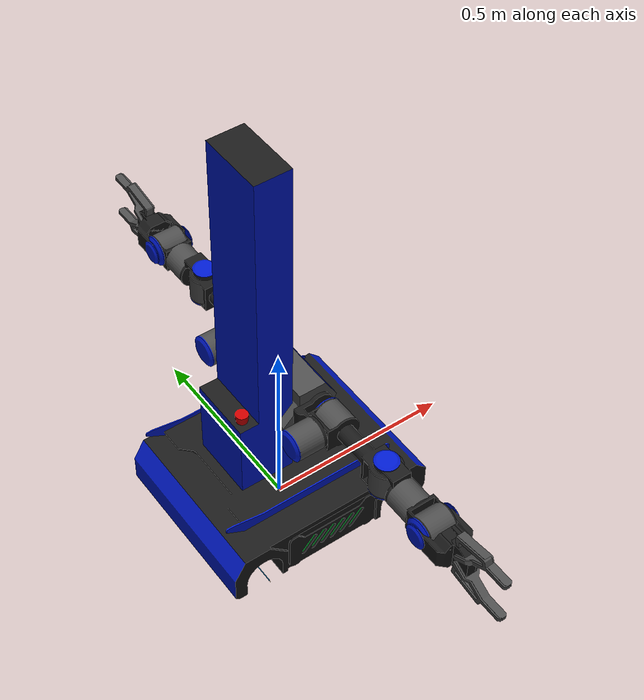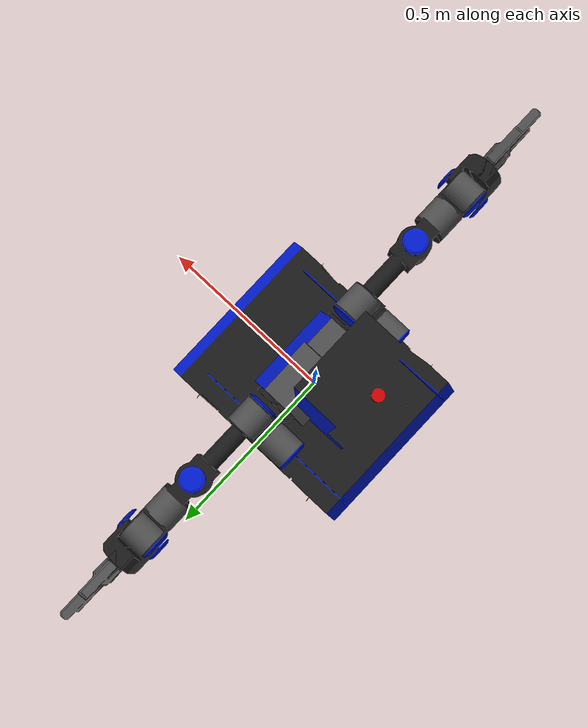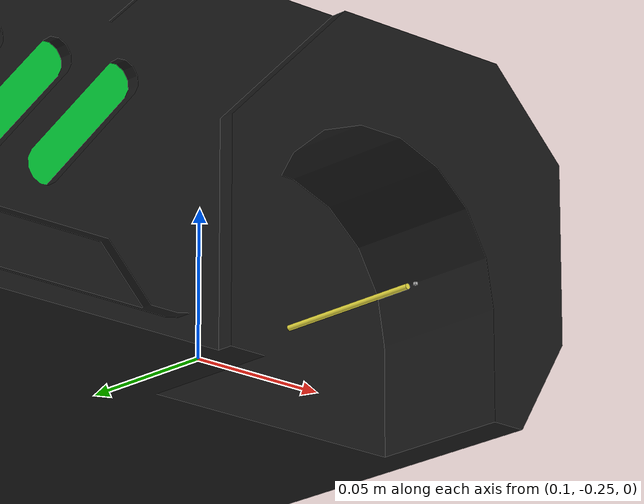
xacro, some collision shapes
<?xml version="1.0"?>
<robot name="wpr2" xmlns:xacro="http://ros.org/wiki/xacro">

  <xacro:include filename="$(find wpr2_description)/urdf/base_mecanum.urdf.xacro"/>

  <xacro:include filename="$(find wpr2_description)/urdf/torso.xacro"/>

  <!-- Left Arm -->
  <xacro:include filename="$(find wpr2_description)/urdf/arm_left.urdf.xacro"/>
  <xacro:arm_left base_frame="chest_link" x="0.035" y="0.18" z="0.0" roll="0" pitch="${M_PI}" yaw="0"/>

  <!-- Right Arm -->
  <xacro:include filename="$(find wpr2_description)/urdf/arm_right.urdf.xacro"/>
  <xacro:arm_right base_frame="chest_link" x="0.035" y="-0.18" z="0.0" roll="0" pitch="0" yaw="${M_PI}"/>

  <gazebo>
    <plugin name="gazebo_ros_control" filename="libgazebo_ros_control.so">
      <robotNamespace>/wpr2</robotNamespace>
      <robotSimType>gazebo_ros_control/DefaultRobotHWSim</robotSimType>
      <legacyModeNS>true</legacyModeNS>
    </plugin>
  </gazebo>

</robot>

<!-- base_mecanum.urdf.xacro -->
<robot xmlns:xacro="http://ros.org/wiki/xacro">
  <xacro:property name="M_PI" value="3.1415926535897931"/>
  <xacro:property name="length" value="0.395"/>
  <xacro:property name="width" value="0.37"/>

  <!-- base_footprint -->
  <link name="base_footprint">
      <visual>
        <origin xyz="0 0 0" rpy="0 0 0" />
        <geometry>
          <box size="0.001 0.001 0.001" />
        </geometry>
        <material name="TransparentGreen" />
      </visual>
  </link>
  <joint name="base_joint" type="fixed">
    <origin xyz="0 0 0.02" rpy="0 0 0" />
    <parent link="base_footprint"/>
    <child link="base_link" />
  </joint>

  <!-- base_link -->
  <link name="base_link">
      <visual>
          <geometry>
              <mesh filename="package://wpr2_description/meshes/base.dae" scale="1 1 1"/>
          </geometry>
        <origin rpy = "0 0 0" xyz = "0.0 0.0 0.13"/>
      </visual>
      <collision>
        <origin xyz="0.005 0 0.05" rpy="0 0 0" />
        <geometry>
          <box size="0.57 0.37 0.1"/>
        </geometry>
      </collision>
      <inertial>
        <mass value="20"/>
        <inertia ixx="10" ixy="0.0" ixz="0.0" iyy="10" iyz="0.0" izz="10"/>
      </inertial>
  </link>

  <!-- mecanum wheel unit -->
  <xacro:macro name="mecanum_wheel" params="LR FB">
      <xacro:if value="${LR=='left'}">
        <xacro:property name="SignY" value="1"/>
        <xacro:property name="RollWheel" value="0"/>
      </xacro:if>
      <xacro:if value="${LR=='right'}">
        <xacro:property name="SignY" value="-1"/>
        <xacro:property name="RollWheel" value="3.1415926535897931"/>
      </xacro:if>
      <xacro:if value="${FB=='front'}">
        <xacro:property name="SignX" value="1"/>
      </xacro:if>
      <xacro:if value="${FB=='back'}">
        <xacro:property name="SignX" value="-1"/>
      </xacro:if>
      <link name="${FB}_${LR}_wheel_link">
          <visual>
              <origin xyz="0.0 0.06 0.0" rpy="1.570796327 0 0"/>
              <geometry>
                <xacro:if value="${(LR=='left' and FB=='front') or (LR=='right' and FB=='back')}">
                  <mesh filename="package://wpr2_description/meshes/mecanum_a.dae" scale="1 1 1"/>
                </xacro:if>
                <xacro:if value="${(LR=='right' and FB=='front')  or (LR=='left' and FB=='back')}">
                  <mesh filename="package://wpr2_description/meshes/mecanum_b.dae" scale="1 1 1"/>
                </xacro:if>
              </geometry>
          </visual>
          <collision>
            <origin xyz="0 0.029 0" rpy="1.570796327 0 0" />
            <geometry>
              <cylinder length="0.058" radius="0.001"/>
            </geometry>
          </collision>
          <inertial>
            <mass value="0.00001"/>
            <inertia ixx="0.1" ixy="0.0" ixz="0.0" iyy="0.1" iyz="0.0" izz="0.1"/>
          </inertial>
      </link>
      <joint name="${FB}_${LR}_wheel_joint" type="continuous">
          <parent link="base_link"/>
          <child link="${FB}_${LR}_wheel_link"/>
          <origin xyz="${SignX*length/2}   ${SignY*width/2}  0.029" rpy="${RollWheel} 0.0 0.0"/>
          <axis xyz="0 1 0"/>
      </joint>
      <transmission name="${FB}_${LR}_transmission">
      <type>transmission_interface/SimpleTransmission</type>
      <joint name="${FB}_${LR}_wheel_joint">
        <hardwareInterface>hardware_interface/PositionJointInterface</hardwareInterface>
      </joint>
      <actuator name="${FB}_${LR}_motor">
        <hardwareInterface>PositionJointInterface</hardwareInterface>
        <mechanicalReduction>1</mechanicalReduction>
      </actuator>
    </transmission>
  </xacro:macro>

  <!-- wheels -->
  <xacro:mecanum_wheel FB="front" LR="left"/>
  <xacro:mecanum_wheel FB="front" LR="right"/>
  <xacro:mecanum_wheel FB="back" LR="right"/>
  <xacro:mecanum_wheel FB="back" LR="left"/>

  <!-- foot unit -->
  <xacro:macro name="wheel_foot" params="LR FB">
      <xacro:if value="${LR=='left'}">
        <xacro:property name="SignY" value="1"/>
      </xacro:if>
      <xacro:if value="${LR=='right'}">
        <xacro:property name="SignY" value="-1"/>
      </xacro:if>
      <xacro:if value="${FB=='front'}">
        <xacro:property name="SignX" value="1"/>
      </xacro:if>
      <xacro:if value="${FB=='back'}">
        <xacro:property name="SignX" value="-1"/>
      </xacro:if>
      <link name="${FB}_${LR}_foot_link">
          <visual>
              <origin xyz="0.0 0.0 0.0" rpy="0 0 0"/>
              <geometry>
                <box size="0.001 0.001 0.001"/>
              </geometry>
          </visual>
          <collision>
            <origin xyz="0 0 0" rpy="0 0 0" />
            <geometry>
              <cylinder length="0.01" radius="0.05"/>
            </geometry>
          </collision>
          <inertial>
            <mass value="0.1"/>
            <inertia ixx="1" ixy="0.0" ixz="0.0" iyy="1" iyz="0.0" izz="1"/>
          </inertial>
      </link>
        <joint name="${FB}_${LR}_foot_joint" type="fixed">
          <parent link="base_link"/>
          <child link="${FB}_${LR}_foot_link"/>
          <origin xyz="${SignX*length/2}   ${SignY*width/1.5}  0.029" rpy="1.57 0.0 0.0"/>
      </joint>
  </xacro:macro>

  <xacro:wheel_foot FB="front" LR="left"/>
  <xacro:wheel_foot FB="front" LR="right"/>
  <xacro:wheel_foot FB="back" LR="right"/>
  <xacro:wheel_foot FB="back" LR="left"/>

  <!-- Lidar -->
  <link name="laser">
    <visual>
      <geometry>
        <cylinder length="0.001" radius="0.001"/>
      </geometry>
      <origin rpy="0 0 0" xyz="0 0 0"/>
    </visual>
  </link>
  <joint name="laser_joint" type="fixed">
    <origin rpy="0 0 3.1415926" xyz="0 0 0.16"/>
    <parent link="base_link"/>
    <child link="laser"/>
  </joint>

  <!-- Gazebo plugin for RpLidar C1 -->
  <gazebo reference="laser">
    <sensor type="ray" name="rplidar_sensor">
      <pose>0 0 0.06 0 0 0</pose>
      <visualize>false</visualize>
      <update_rate>10</update_rate>
      <ray>
        <scan>
          <horizontal>
            <samples>720</samples>
            <resolution>1</resolution>
            <min_angle>-3.14159265</min_angle>
            <max_angle>3.14159265</max_angle>
          </horizontal>
        </scan>
        <range>
          <min>0.02</min>
          <max>10.0</max>
          <resolution>0.01</resolution>
        </range>
      </ray>
      <plugin name="rplidar_ros_controller" filename="libgazebo_ros_laser.so">
        <topicName>scan_raw</topicName>
        <frameName>laser</frameName>
      </plugin>
    </sensor>
  </gazebo>
</robot>

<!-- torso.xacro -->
<robot xmlns:xacro="http://ros.org/wiki/xacro">
  <link name = "chest_link">
    <visual>
      <geometry>
        <mesh filename="package://wpr2_description/meshes/chest.dae" scale=" 1 1 1 "/>
      </geometry>
      <origin rpy = "0 0 0" xyz = "0.015 0.0 0.01"/>
    </visual>
    <collision>
      <origin xyz="0.03 0 -0.01" rpy="0 0 0"/>
      <geometry>
       <box size="0.1 0.22 0.13"/>
      </geometry>
    </collision>
     <inertial>
      <mass value="1"/>
      <inertia ixx="0.1" ixy="0.0" ixz="0.0" iyy="0.1" iyz="0.0" izz="0.01"/>
    </inertial>
  </link>

  <joint name="chest_height" type="prismatic">
    <parent link="base_link"/>
    <child link="chest_link"/>
    <limit effort="1000.0" lower="0" upper="0.7" velocity="0.5"/>
    <dynamics damping="0.0" friction="0.0"/>
    <origin xyz="0.0 0 0.4" rpy="0 0 0"/>
    <axis xyz="0 0 1"/>
  </joint>
  <transmission name="chest_height_transmission">
    <type>transmission_interface/SimpleTransmission</type>
    <joint name="chest_height">
      <hardwareInterface>hardware_interface/PositionJointInterface</hardwareInterface>
    </joint>
    <actuator name="chest_height_motor">
      <hardwareInterface>PositionJointInterface</hardwareInterface>
      <mechanicalReduction>1</mechanicalReduction>
    </actuator>
  </transmission>

  <!-- Camera -->
  <link name="femto_base">
    <visual>
      <origin rpy="0 0 0" xyz="0 0 0"/>
      <geometry>
        <box size="0 0 0"/>
      </geometry>
    </visual>
    <inertial>
      <mass value="0.1"/>
      <inertia ixx="0.1" ixy="0.0" ixz="0.0" iyy="0.1" iyz="0.0" izz="0.01"/>
    </inertial>
  </link>
  <joint name="femto_height" type="prismatic">
    <parent link="chest_link"/>
    <child link="femto_base"/>
    <limit effort="1000.0" lower="0" upper="0.1" velocity="0.5"/>
    <origin xyz="0.05 0 0" rpy="0 -1.5707963 0"/>
  </joint>
  <transmission name="femto_height_transmission">
    <type>transmission_interface/SimpleTransmission</type>
    <joint name="femto_height">
      <hardwareInterface>hardware_interface/PositionJointInterface</hardwareInterface>
    </joint>
    <actuator name="femto_height_motor">
      <hardwareInterface>PositionJointInterface</hardwareInterface>
      <mechanicalReduction>1</mechanicalReduction>
    </actuator>
  </transmission>

  <link name="camera_link">
    <visual>
      <origin xyz="0 0 0" rpy="0 0 0"/>
      <geometry>
        <mesh filename="package://wpr2_description/meshes/femto_bolt.dae" scale="1 1 1"/>
      </geometry>
    </visual>
    <collision>
      <origin xyz="-0.015 0 0" rpy="0 0 0"/>
      <geometry>
       <box size="0.05 0.1 0.04"/>
      </geometry>
    </collision>
     <inertial>
      <mass value="1"/>
      <inertia ixx="0.1" ixy="0.0" ixz="0.0" iyy="0.1" iyz="0.0" izz="0.01"/>
    </inertial>
  </link>

  <joint name="femto_pitch" type="revolute">
    <axis xyz="0 -1 0"/>
    <limit effort="1000.0" lower="-1.57" upper="1.57" velocity="0.5"/>
    <origin xyz="0 0 0" rpy="0 1.57 0"/>
    <parent link="femto_base"/>
    <child link="camera_link"/>
  </joint>
  <transmission name="femto_pitch_transmission">
    <type>transmission_interface/SimpleTransmission</type>
    <joint name="femto_pitch">
      <hardwareInterface>hardware_interface/PositionJointInterface</hardwareInterface>
    </joint>
    <actuator name="femto_pitch_motor">
      <hardwareInterface>PositionJointInterface</hardwareInterface>
      <mechanicalReduction>1</mechanicalReduction>
    </actuator>
  </transmission>

</robot>

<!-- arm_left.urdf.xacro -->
<robot xmlns:xacro="http://ros.org/wiki/xacro">
  <xacro:macro name="arm_left" params="base_frame x y z roll pitch yaw">
    <!-- joint 0 -->
    <link name="left_link_0">
    </link>
    <joint name="left_joint_0" type="fixed">
      <parent link="${base_frame}"/>
      <child link="left_link_0"/>
      <origin xyz="${x} ${y} ${z}" rpy="${roll} ${pitch} ${yaw}"/>
    </joint>

    <!-- joint 1 -->
    <link name="left_link_1">
      <visual>
        <geometry>
          <mesh filename="package://wpr2_description/meshes/arm/arm_link_1.dae" scale="1 1 1"/>
        </geometry>
        <origin rpy="${-M_PI*0.5} 0 ${M_PI*0.5}" xyz="0 -0.07 0"/>
      </visual>
      <collision>
        <origin xyz="0.09 0 0" rpy="0 ${M_PI*0.5} 0"/>
        <geometry>
          <cylinder length="0.07" radius="0.041"/>
        </geometry>
      </collision>
      <inertial>
        <mass value="0.1"/>
        <inertia ixx="0.1" ixy="0.0" ixz="0.0" iyy="0.1" iyz="0.0" izz="0.01"/>
      </inertial>
    </link>
    <joint name="left_joint_1" type="continuous">
      <parent link="left_link_0"/>
      <child link="left_link_1"/>
      <origin xyz="0.0 0 0.0" rpy="0 0 0"/>
      <axis xyz="0 1 0"/>
    </joint>
    <transmission name="left_joint_1_transmission">
      <type>transmission_interface/SimpleTransmission</type>
      <joint name="left_joint_1">
        <hardwareInterface>hardware_interface/PositionJointInterface</hardwareInterface>
      </joint>
      <actuator name="left_joint_1_motor">
        <hardwareInterface>PositionJointInterface</hardwareInterface>
        <mechanicalReduction>1</mechanicalReduction>
      </actuator>
    </transmission>

    <!-- joint 2 -->
    <link name="left_link_2">
      <visual>
        <geometry>
          <mesh filename="package://wpr2_description/meshes/arm/arm_link_2.dae" scale="1 1 1"/>
        </geometry>
        <origin rpy="${M_PI} 0 0" xyz="0 0 0"/>
      </visual>
      <collision>
        <origin xyz="0 0.05 0 " rpy="${-M_PI*0.5} 0 0"/>
        <geometry>
          <cylinder length="0.18" radius="0.041"/>
        </geometry>
      </collision>
      <inertial>
        <mass value="0.1"/>
        <inertia ixx="0.1" ixy="0.0" ixz="0.0" iyy="0.1" iyz="0.0" izz="0.01"/>
      </inertial>
    </link>
    <joint name="left_joint_2" type="continuous">
      <parent link="left_link_1"/>
      <child link="left_link_2"/>
      <origin xyz="0 0 0 " rpy="0 0 0"/>
      <axis xyz="1 0 0"/>
    </joint>
    <transmission name="left_joint_2_transmission">
      <type>transmission_interface/SimpleTransmission</type>
      <joint name="left_joint_2">
        <hardwareInterface>hardware_interface/PositionJointInterface</hardwareInterface>
      </joint>
      <actuator name="left_joint_2_motor">
        <hardwareInterface>PositionJointInterface</hardwareInterface>
        <mechanicalReduction>1</mechanicalReduction>
      </actuator>
    </transmission>

    <!-- joint 3 -->
    <link name="left_link_3">
      <visual>
        <geometry>
          <mesh filename="package://wpr2_description/meshes/arm/arm_link_3.dae" scale="1 1 1"/>
        </geometry>
        <origin xyz="0 0.19 0" rpy="${M_PI*0.5} 0 ${-M_PI*0.5}" />
      </visual>
      <collision>
        <origin xyz="0 0.19 0" rpy="0 0 0"/>
        <geometry>
          <cylinder length="0.07" radius="0.041"/>
        </geometry>
      </collision>
      <inertial>
        <mass value="0.1"/>
        <inertia ixx="0.1" ixy="0.0" ixz="0.0" iyy="0.1" iyz="0.0" izz="0.01"/>
      </inertial>
    </link>
    <joint name="left_joint_3" type="continuous">
      <parent link="left_link_2"/>
      <child link="left_link_3"/>
      <origin xyz="0 0 0 " rpy="0 0 0"/>
      <axis xyz="0 1 0"/>
    </joint>
    <transmission name="left_joint_3_transmission">
      <type>transmission_interface/SimpleTransmission</type>
      <joint name="left_joint_3">
        <hardwareInterface>hardware_interface/PositionJointInterface</hardwareInterface>
      </joint>
      <actuator name="left_joint_3_motor">
        <hardwareInterface>PositionJointInterface</hardwareInterface>
        <mechanicalReduction>1</mechanicalReduction>
      </actuator>
    </transmission>

    <!-- joint 4 -->
    <link name="left_link_4">
      <visual>
        <geometry>
          <mesh filename="package://wpr2_description/meshes/arm/arm_link_4.dae" scale="1 1 1"/>
        </geometry>
        <origin rpy="${M_PI*0.5} ${M_PI*0.5} 0" xyz="0 0 0.051"/>
      </visual>
      <collision>
        <origin xyz="0 0.09 0" rpy="${M_PI*0.5}  0 0"/>
        <geometry>
          <cylinder length="0.07" radius="0.041"/>
        </geometry>
      </collision>
      <inertial>
        <mass value="0.1"/>
        <inertia ixx="0.1" ixy="0.0" ixz="0.0" iyy="0.1" iyz="0.0" izz="0.01"/>
      </inertial>
    </link>
    <joint name="left_joint_4" type="continuous">
      <parent link="left_link_3"/>
      <child link="left_link_4"/>
      <origin xyz="0 0.19 0" rpy="0 ${M_PI} 0"/>
      <axis xyz="0 0 1"/>
    </joint>
    <transmission name="left_joint_4_transmission">
      <type>transmission_interface/SimpleTransmission</type>
      <joint name="left_joint_4">
        <hardwareInterface>hardware_interface/PositionJointInterface</hardwareInterface>
      </joint>
      <actuator name="left_joint_4_motor">
        <hardwareInterface>PositionJointInterface</hardwareInterface>
        <mechanicalReduction>1</mechanicalReduction>
      </actuator>
    </transmission>

    <!-- joint 5 -->
    <link name="left_link_5">
      <visual>
        <geometry>
          <mesh filename="package://wpr2_description/meshes/arm/arm_link_5.dae" scale="1 1 1"/>
        </geometry>
        <origin rpy="${-M_PI*0.5} 0 ${-M_PI*0.5}" xyz="0 0 0"/>
      </visual>
      <collision>
        <origin xyz="0 0 0" rpy="0 0 0"/>
        <geometry>
          <cylinder length="0.07" radius="0.041"/>
        </geometry>
      </collision>
      <inertial>
        <mass value="0.1"/>
        <inertia ixx="0.1" ixy="0.0" ixz="0.0" iyy="0.1" iyz="0.0" izz="0.01"/>
      </inertial>
    </link>
    <joint name="left_joint_5" type="continuous">
      <parent link="left_link_4"/>
      <child link="left_link_5"/>
      <origin xyz="0 0.17 0" rpy="0 ${M_PI*0.5} 0"/>
      <axis xyz="0 1 0"/>
    </joint>
    <transmission name="left_joint_5_transmission">
      <type>transmission_interface/SimpleTransmission</type>
      <joint name="left_joint_5">
        <hardwareInterface>hardware_interface/PositionJointInterface</hardwareInterface>
      </joint>
      <actuator name="left_joint_5_motor">
        <hardwareInterface>PositionJointInterface</hardwareInterface>
        <mechanicalReduction>1</mechanicalReduction>
      </actuator>
    </transmission>

    <!-- joint 6 palm -->
    <link name="left_link_6">
      <visual>
        <geometry>
          <mesh filename="package://wpr2_description/meshes/arm/arm_link_palm.dae" scale="1 1 1"/>
        </geometry>
        <origin rpy="${-M_PI*0.5} ${M_PI*0.5}  0" xyz="0 0 0.05"/>
      </visual>
      <inertial>
        <mass value="0.1"/>
        <inertia ixx="0.1" ixy="0.0" ixz="0.0" iyy="0.1" iyz="0.0" izz="0.01"/>
      </inertial>
    </link>
    <joint name="left_joint_6" type="continuous">
      <parent link="left_link_5"/>
      <child link="left_link_6"/>
      <origin xyz="0 0 0" rpy="0 0 0"/>
      <axis xyz="0 0 1"/>
    </joint>
    <transmission name="left_joint_6_transmission">
      <type>transmission_interface/SimpleTransmission</type>
      <joint name="left_joint_6">
        <hardwareInterface>hardware_interface/PositionJointInterface</hardwareInterface>
      </joint>
      <actuator name="left_joint_6_motor">
        <hardwareInterface>PositionJointInterface</hardwareInterface>
        <mechanicalReduction>1</mechanicalReduction>
      </actuator>
    </transmission>

    <link name="left_link_finger">
      <visual>
        <geometry>
          <mesh filename="package://wpr2_description/meshes/arm/arm_link_palm.dae" scale="1 1 1"/>
        </geometry>
        <origin rpy="${-M_PI*0.5} ${-M_PI*0.5} 0" xyz="0 0 -0.05"/>
      </visual>
      <inertial>
        <mass value="0.1"/>
        <inertia ixx="0.1" ixy="0.0" ixz="0.0" iyy="0.1" iyz="0.0" izz="0.01"/>
      </inertial>
    </link>
    <joint name="left_joint_finger" type="fixed">
      <parent link="left_link_6"/>
      <child link="left_link_finger"/>
      <origin xyz="0 0 0" rpy="0 0 0"/>
    </joint>

    <!-- finger 0-->

    <!-- finger 1-->
  </xacro:macro>
</robot>

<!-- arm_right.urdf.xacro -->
<robot xmlns:xacro="http://ros.org/wiki/xacro">
  <xacro:macro name="arm_right" params="base_frame x y z roll pitch yaw">
    <!-- joint 0 -->
    <link name="right_link_0">
    </link>
    <joint name="right_joint_0" type="fixed">
      <parent link="${base_frame}"/>
      <child link="right_link_0"/>
      <origin xyz="${x} ${y} ${z}" rpy="${roll} ${pitch} ${yaw}"/>
    </joint>

    <!-- joint 1 -->
    <link name="right_link_1">
      <visual>
        <geometry>
          <mesh filename="package://wpr2_description/meshes/arm/arm_link_1.dae" scale="1 1 1"/>
        </geometry>
        <origin rpy="${-M_PI*0.5} 0 ${M_PI*0.5}" xyz="0 -0.07 0"/>
      </visual>
      <collision>
        <origin xyz="0.09 0 0" rpy="0 ${M_PI*0.5} 0"/>
        <geometry>
          <cylinder length="0.07" radius="0.041"/>
        </geometry>
      </collision>
      <inertial>
        <mass value="0.1"/>
        <inertia ixx="0.1" ixy="0.0" ixz="0.0" iyy="0.1" iyz="0.0" izz="0.01"/>
      </inertial>
    </link>
    <joint name="right_joint_1" type="continuous">
      <parent link="right_link_0"/>
      <child link="right_link_1"/>
      <origin xyz="0.0 0 0.0" rpy="0 0 0"/>
      <axis xyz="0 1 0"/>
    </joint>
    <transmission name="right_joint_1_transmission">
      <type>transmission_interface/SimpleTransmission</type>
      <joint name="right_joint_1">
        <hardwareInterface>hardware_interface/PositionJointInterface</hardwareInterface>
      </joint>
      <actuator name="right_joint_1_motor">
        <hardwareInterface>PositionJointInterface</hardwareInterface>
        <mechanicalReduction>1</mechanicalReduction>
      </actuator>
    </transmission>

    <!-- joint 2 -->
    <link name="right_link_2">
      <visual>
        <geometry>
          <mesh filename="package://wpr2_description/meshes/arm/arm_link_2.dae" scale="1 1 1"/>
        </geometry>
        <origin rpy="${M_PI} 0 0" xyz="0 0 0"/>
      </visual>
      <collision>
        <origin xyz="0 0.05 0 " rpy="${-M_PI*0.5} 0 0"/>
        <geometry>
          <cylinder length="0.18" radius="0.041"/>
        </geometry>
      </collision>
      <inertial>
        <mass value="0.1"/>
        <inertia ixx="0.1" ixy="0.0" ixz="0.0" iyy="0.1" iyz="0.0" izz="0.01"/>
      </inertial>
    </link>
    <joint name="right_joint_2" type="continuous">
      <parent link="right_link_1"/>
      <child link="right_link_2"/>
      <origin xyz="0 0 0 " rpy="0 0 0"/>
      <axis xyz="1 0 0"/>
    </joint>
    <transmission name="right_joint_2_transmission">
      <type>transmission_interface/SimpleTransmission</type>
      <joint name="right_joint_2">
        <hardwareInterface>hardware_interface/PositionJointInterface</hardwareInterface>
      </joint>
      <actuator name="right_joint_2_motor">
        <hardwareInterface>PositionJointInterface</hardwareInterface>
        <mechanicalReduction>1</mechanicalReduction>
      </actuator>
    </transmission>

    <!-- joint 3 -->
    <link name="right_link_3">
      <visual>
        <geometry>
          <mesh filename="package://wpr2_description/meshes/arm/arm_link_3.dae" scale="1 1 1"/>
        </geometry>
        <origin xyz="0 0.19 0" rpy="${-M_PI*0.5} 0 ${-M_PI*0.5}" />
      </visual>
      <collision>
        <origin xyz="0 0.19 0" rpy="0 0 0"/>
        <geometry>
          <cylinder length="0.07" radius="0.041"/>
        </geometry>
      </collision>
      <inertial>
        <mass value="0.1"/>
        <inertia ixx="0.1" ixy="0.0" ixz="0.0" iyy="0.1" iyz="0.0" izz="0.01"/>
      </inertial>
    </link>
    <joint name="right_joint_3" type="continuous">
      <parent link="right_link_2"/>
      <child link="right_link_3"/>
      <origin xyz="0 0 0 " rpy="0 0 0"/>
      <axis xyz="0 1 0"/>
    </joint>
    <transmission name="right_joint_3_transmission">
      <type>transmission_interface/SimpleTransmission</type>
      <joint name="right_joint_3">
        <hardwareInterface>hardware_interface/PositionJointInterface</hardwareInterface>
      </joint>
      <actuator name="right_joint_3_motor">
        <hardwareInterface>PositionJointInterface</hardwareInterface>
        <mechanicalReduction>1</mechanicalReduction>
      </actuator>
    </transmission>

    <!-- joint 4 -->
    <link name="right_link_4">
      <visual>
        <geometry>
          <mesh filename="package://wpr2_description/meshes/arm/arm_link_4.dae" scale="1 1 1"/>
        </geometry>
        <origin rpy="${M_PI*0.5} ${M_PI*0.5} 0" xyz="0 0 0.051"/>
      </visual>
      <collision>
        <origin xyz="0 0.09 0" rpy="${M_PI*0.5}  0 0"/>
        <geometry>
          <cylinder length="0.07" radius="0.041"/>
        </geometry>
      </collision>
      <inertial>
        <mass value="0.1"/>
        <inertia ixx="0.1" ixy="0.0" ixz="0.0" iyy="0.1" iyz="0.0" izz="0.01"/>
      </inertial>
    </link>
    <joint name="right_joint_4" type="continuous">
      <parent link="right_link_3"/>
      <child link="right_link_4"/>
      <origin xyz="0 0.19 0" rpy="0 0 0"/>
      <axis xyz="0 0 1"/>
    </joint>
    <transmission name="right_joint_4_transmission">
      <type>transmission_interface/SimpleTransmission</type>
      <joint name="right_joint_4">
        <hardwareInterface>hardware_interface/PositionJointInterface</hardwareInterface>
      </joint>
      <actuator name="right_joint_4_motor">
        <hardwareInterface>PositionJointInterface</hardwareInterface>
        <mechanicalReduction>1</mechanicalReduction>
      </actuator>
    </transmission>

    <!-- joint 5 -->
    <link name="right_link_5">
      <visual>
        <geometry>
          <mesh filename="package://wpr2_description/meshes/arm/arm_link_5.dae" scale="1 1 1"/>
        </geometry>
        <origin rpy="${-M_PI*0.5} 0 ${-M_PI*0.5}" xyz="0 0 0"/>
      </visual>
      <collision>
        <origin xyz="0 0 0" rpy="0 0 0"/>
        <geometry>
          <cylinder length="0.07" radius="0.041"/>
        </geometry>
      </collision>
      <inertial>
        <mass value="0.1"/>
        <inertia ixx="0.1" ixy="0.0" ixz="0.0" iyy="0.1" iyz="0.0" izz="0.01"/>
      </inertial>
    </link>
    <joint name="right_joint_5" type="continuous">
      <parent link="right_link_4"/>
      <child link="right_link_5"/>
      <origin xyz="0 0.17 0" rpy="0 ${-M_PI*0.5} 0"/>
      <axis xyz="0 1 0"/>
    </joint>
    <transmission name="right_joint_5_transmission">
      <type>transmission_interface/SimpleTransmission</type>
      <joint name="right_joint_5">
        <hardwareInterface>hardware_interface/PositionJointInterface</hardwareInterface>
      </joint>
      <actuator name="right_joint_5_motor">
        <hardwareInterface>PositionJointInterface</hardwareInterface>
        <mechanicalReduction>1</mechanicalReduction>
      </actuator>
    </transmission>

    <!-- joint 6 palm -->
    <link name="right_link_6">
      <visual>
        <geometry>
          <mesh filename="package://wpr2_description/meshes/arm/arm_link_palm.dae" scale="1 1 1"/>
        </geometry>
        <origin rpy="${-M_PI*0.5} ${M_PI*0.5}  0" xyz="0 0 0.05"/>
      </visual>
      <inertial>
        <mass value="0.1"/>
        <inertia ixx="0.1" ixy="0.0" ixz="0.0" iyy="0.1" iyz="0.0" izz="0.01"/>
      </inertial>
    </link>
    <joint name="right_joint_6" type="continuous">
      <parent link="right_link_5"/>
      <child link="right_link_6"/>
      <origin xyz="0 0 0" rpy="0 0 0"/>
      <axis xyz="0 0 1"/>
    </joint>
    <transmission name="right_joint_6_transmission">
      <type>transmission_interface/SimpleTransmission</type>
      <joint name="right_joint_6">
        <hardwareInterface>hardware_interface/PositionJointInterface</hardwareInterface>
      </joint>
      <actuator name="right_joint_6_motor">
        <hardwareInterface>PositionJointInterface</hardwareInterface>
        <mechanicalReduction>1</mechanicalReduction>
      </actuator>
    </transmission>

    <link name="right_link_finger">
      <visual>
        <geometry>
          <mesh filename="package://wpr2_description/meshes/arm/arm_link_palm.dae" scale="1 1 1"/>
        </geometry>
        <origin rpy="${-M_PI*0.5} ${-M_PI*0.5} 0" xyz="0 0 -0.05"/>
      </visual>
      <inertial>
        <mass value="0.1"/>
        <inertia ixx="0.1" ixy="0.0" ixz="0.0" iyy="0.1" iyz="0.0" izz="0.01"/>
      </inertial>
    </link>
    <joint name="right_joint_finger" type="fixed">
      <parent link="right_link_6"/>
      <child link="right_link_finger"/>
      <origin xyz="0 0 0" rpy="0 0 0"/>
    </joint>

    <!-- finger 0-->

    <!-- finger 1-->
  </xacro:macro>
</robot>
